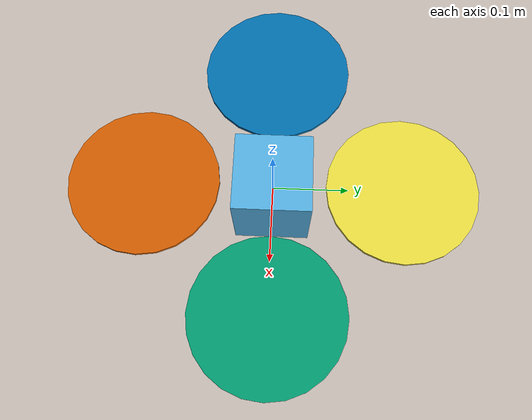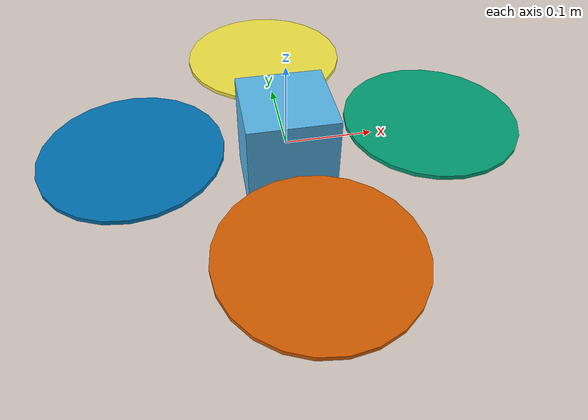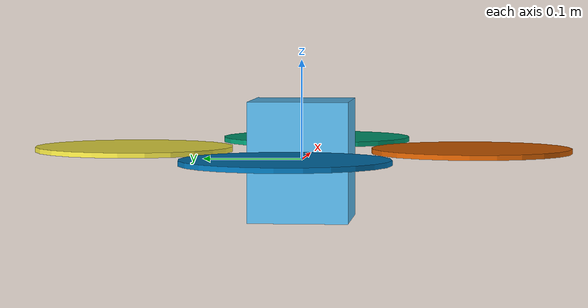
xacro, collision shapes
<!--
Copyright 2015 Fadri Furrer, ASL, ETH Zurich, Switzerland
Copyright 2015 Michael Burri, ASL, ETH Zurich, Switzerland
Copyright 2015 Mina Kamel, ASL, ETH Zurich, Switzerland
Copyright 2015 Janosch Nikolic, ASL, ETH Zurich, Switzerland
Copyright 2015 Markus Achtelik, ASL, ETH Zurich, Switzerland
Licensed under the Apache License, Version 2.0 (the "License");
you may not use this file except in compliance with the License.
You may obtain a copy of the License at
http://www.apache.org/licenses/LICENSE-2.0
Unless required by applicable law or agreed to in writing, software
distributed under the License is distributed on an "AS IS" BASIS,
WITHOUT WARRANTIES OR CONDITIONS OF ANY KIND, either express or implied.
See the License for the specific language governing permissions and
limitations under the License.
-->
<?xml version="1.0"?>

<robot name="hummingbird" xmlns:xacro="http://ros.org/wiki/xacro">
  <!-- Properties (Taken from Novel Dynamic Inversion Architecture Design
for Quadrocopter Control by Jian Wang et al.) -->
  <xacro:property name="namespace" value="hummingbird"/>
  <xacro:property name="rotor_velocity_slowdown_sim" value="10" />
  <xacro:property name="use_mesh_file" value="true"/>
  <xacro:property name="mesh_file" value="package://rufous_description/meshes/hummingbird.dae" />
  <xacro:property name="mass" value="0.68" /> <!-- [kg] -->
  <xacro:property name="body_width" value="0.1" />
  <xacro:property name="body_height" value="0.12" />
  <xacro:property name="mass_rotor" value="0.009" /> <!-- [kg] -->
  <xacro:property name="arm_length" value="0.17" />
  <xacro:property name="rotor_offset_top" value="0.01" />
  <xacro:property name="radius_rotor" value="0.1" />
  <xacro:property name="motor_constant" value="8.54858e-06" /> <!-- [kg m/s^2] -->
  <xacro:property name="moment_constant" value="0.016" />
  <xacro:property name="time_constant_up" value="0.0125" />
  <xacro:property name="time_constant_down" value="0.025" />
  <xacro:property name="max_rot_velocity" value="838" /> <!-- [rad/s] -->
  <xacro:property name="rotor_drag_coefficient" value="8.06428e-05" />
  <xacro:property name="rolling_moment_coefficient" value="0.000001" />

	<!-- Property Blocks -->
	<xacro:property name="body_inertia">
		<inertia ixx="0.007" ixy="0.0" ixz="0.0" iyy="0.007" iyz="0.0" izz="0.012" /> <!-- [kg m^2] [kg m^2] [kg m^2] [kg m^2] [kg m^2] [kg m^2] -->
	</xacro:property>

	<!-- inertia of a single rotor, assuming it is a cuboid. Height=3mm, width=15mm -->
	<xacro:property name="rotor_inertia">
		<xacro:box_inertia x="${radius_rotor}" y="0.015" z="0.003" mass="${mass_rotor*rotor_velocity_slowdown_sim}" />
	</xacro:property>

	<xacro:include filename="$(find rufous_description)/urdf/hummingbird.transmission.xacro"/>

	<!-- Included URDF Files -->
	<xacro:include filename="$(find rufous_description)/urdf/multirotor_base.xacro" />

  <gazebo>
    <plugin name="gazebo_ros_control" filename="libgazebo_ros_control.so">
    </plugin>
  </gazebo>

	<!-- Instantiate multirotor_base_macro once -->
	<xacro:multirotor_base_macro
		robot_namespace="${namespace}"
		mass="${mass}"
		body_width="${body_width}"
		body_height="${body_height}"
		use_mesh_file="${use_mesh_file}"
		mesh_file="${mesh_file}">
		<xacro:insert_block name="body_inertia" />
	</xacro:multirotor_base_macro>

	<!-- Instantiate rotors -->
	<xacro:vertical_rotor
		robot_namespace="${namespace}"
		suffix="fl"
		direction="cw"
		motor_constant="${motor_constant}"
		moment_constant="${moment_constant}"
		parent="${namespace}/base_link"
		mass_rotor="${mass_rotor}"
		radius_rotor="${radius_rotor}"
		time_constant_up="${time_constant_up}"
		time_constant_down="${time_constant_down}"
		max_rot_velocity="${max_rot_velocity}"
		motor_number="0"
		rotor_drag_coefficient="${rotor_drag_coefficient}"
		rolling_moment_coefficient="${rolling_moment_coefficient}"
		color="Red"
		use_own_mesh="false"
		mesh="">
		<origin xyz="${arm_length} 0 ${rotor_offset_top}" rpy="0 0 0" />
		<xacro:insert_block name="rotor_inertia" />
	</xacro:vertical_rotor>

	<xacro:vertical_rotor
		robot_namespace="${namespace}"
		suffix="fr"
		direction="ccw"
		motor_constant="${motor_constant}"
		moment_constant="${moment_constant}"
		parent="${namespace}/base_link"
		mass_rotor="${mass_rotor}"
		radius_rotor="${radius_rotor}"
		time_constant_up="${time_constant_up}"
		time_constant_down="${time_constant_down}"
		max_rot_velocity="${max_rot_velocity}"
		motor_number="1"
		rotor_drag_coefficient="${rotor_drag_coefficient}"
		rolling_moment_coefficient="${rolling_moment_coefficient}"
		color="Blue"
		use_own_mesh="false"
		mesh="">
		<origin xyz="0 ${arm_length} ${rotor_offset_top}" rpy="0 0 0" />
		<xacro:insert_block name="rotor_inertia" />
	</xacro:vertical_rotor>

	<xacro:vertical_rotor
		robot_namespace="${namespace}"
		suffix="back"
		direction="cw"
		motor_constant="${motor_constant}"
		moment_constant="${moment_constant}"
		parent="${namespace}/base_link"
		mass_rotor="${mass_rotor}"
		radius_rotor="${radius_rotor}"
		time_constant_up="${time_constant_up}"
		time_constant_down="${time_constant_down}"
		max_rot_velocity="${max_rot_velocity}"
		motor_number="2"
		rotor_drag_coefficient="${rotor_drag_coefficient}"
		rolling_moment_coefficient="${rolling_moment_coefficient}"
		color="Blue"
		use_own_mesh="false"
		mesh="">
		<origin xyz="-${arm_length} 0 ${rotor_offset_top}" rpy="0 0 0" />
		<xacro:insert_block name="rotor_inertia" />
	</xacro:vertical_rotor>

	<xacro:vertical_rotor
		robot_namespace="${namespace}"
		suffix="right"
		direction="ccw"
		motor_constant="${motor_constant}"
		moment_constant="${moment_constant}"
		parent="${namespace}/base_link"
		mass_rotor="${mass_rotor}"
		radius_rotor="${radius_rotor}"
		time_constant_up="${time_constant_up}"
		time_constant_down="${time_constant_down}"
		max_rot_velocity="${max_rot_velocity}"
		motor_number="3"
		rotor_drag_coefficient="${rotor_drag_coefficient}"
		rolling_moment_coefficient="${rolling_moment_coefficient}"
		color="Blue"
		use_own_mesh="false"
		mesh="">
		<origin xyz="0 -${arm_length} ${rotor_offset_top}" rpy="0 0 0" />
		<xacro:insert_block name="rotor_inertia" />
	</xacro:vertical_rotor>

</robot>

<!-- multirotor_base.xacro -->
<robot xmlns:xacro="http://ros.org/wiki/xacro">
	<!-- Macro for the inertia of a box -->
	<xacro:macro name="box_inertia" params="x y z mass">
		<inertia ixx="${0.0833333 * mass * (y*y + z*z)}" ixy="0.0" ixz="0.0"
			iyy="${0.0833333 * mass * (x*x + z*z)}" iyz="0.0"
			izz="${0.0833333 * mass * (x*x + y*y)}" />
	</xacro:macro>

	<!-- Macro for the inertial properties of a box -->
	<xacro:macro name="box_inertial" params="x y z mass *origin">
		<inertial>
			<mass value="${mass}" />
			<xacro:insert_block name="origin" />
			<xacro:box_inertia x="${x}" y="${y}" z="${z}" mass="${mass}" />
		</inertial>
	</xacro:macro>

	<!-- Main multirotor link -->
	<xacro:macro name="multirotor_base_macro"
		params="robot_namespace mass body_width body_height use_mesh_file mesh_file *inertia">
		<link name="${robot_namespace}/base_link"></link>

		<joint name="${robot_namespace}/base_joint" type="fixed">
			<origin xyz="0 0 0" rpy="0 0 0" />
			<parent link="${robot_namespace}/base_link" />
			<child link="${robot_namespace}/base_link_inertia" />
		</joint>

		<link name="${robot_namespace}/base_link_inertia">
			<inertial>
				<mass value="${mass}" />  <!-- [kg] -->
				<origin xyz="0 0 0" />
				<xacro:insert_block name="inertia" />
			</inertial>

			<visual>
				<origin xyz="0 0 0" rpy="0 0 0" />
				<geometry>
					<xacro:if value="${use_mesh_file}">
						<mesh filename="${mesh_file}" scale="1 1 1" />
					</xacro:if>
					<xacro:unless value="${use_mesh_file}">
						<box size="${body_width} ${body_width} ${body_height}"/>
					</xacro:unless>
				</geometry>
			</visual>

			<collision>
				<origin xyz="0 0 0" rpy="0 0 0" />
				<geometry>
					<box size="${body_width} ${body_width} ${body_height}" />
				</geometry>
			</collision>
		</link>

    <!-- attach multirotor_base_plugin to the base_link -->
  </xacro:macro>

  <xacro:macro name="EffortTransmission" params="joint n">
    <transmission name="transmission_${n}">
      <type>transmission_interface/SimpleTransmission</type>
      <joint name="${joint}">
        <hardwareInterface>hardware_interface/EffortJointInterface</hardwareInterface>
      </joint>
      <actuator name="motor${n}"/>
    </transmission>
  </xacro:macro>

  <!-- Rotor joint and link -->
  <xacro:macro name="vertical_rotor"
    params="robot_namespace suffix direction motor_constant moment_constant parent mass_rotor radius_rotor time_constant_up time_constant_down max_rot_velocity motor_number rotor_drag_coefficient rolling_moment_coefficient color use_own_mesh mesh *origin *inertia">
    <joint name="rotor_${motor_number}_joint" type="continuous">
      <xacro:insert_block name="origin" />
      <axis xyz="0 0 1" />
      <!-- TODO(ff): not currently set because it's not yet supported -->
      <parent link="${parent}" />
      <child link="rotor_${motor_number}" />
    </joint>
    <link name="rotor_${motor_number}">
      <inertial>
        <mass value="${mass_rotor}" /> <!-- [kg] -->
        <xacro:insert_block name="inertia" />
      </inertial>
      <visual>
        <geometry>

          <xacro:if value="${use_own_mesh}">
            <mesh filename="${mesh}"
              scale="1 1 1" />
          </xacro:if>
          <xacro:unless value="${use_own_mesh}">
            <mesh filename="package://rufous_description/meshes/propeller_${direction}.dae"
              scale="${radius_rotor} ${radius_rotor} ${radius_rotor}" /> <!-- The propeller meshes have a radius of 1m -->
          </xacro:unless>
        </geometry>
      </visual>
      <collision>
        <geometry>
          <cylinder length="0.005" radius="${radius_rotor}" />
        </geometry>
      </collision>
    </link>
    <xacro:EffortTransmission n="${motor_number}" joint="rotor_${motor_number}_joint" />
    <gazebo reference="${robot_namespace}/rotor_${motor_number}">
      <material>Gazebo/${color}</material>
    </gazebo>
  </xacro:macro>
</robot>
